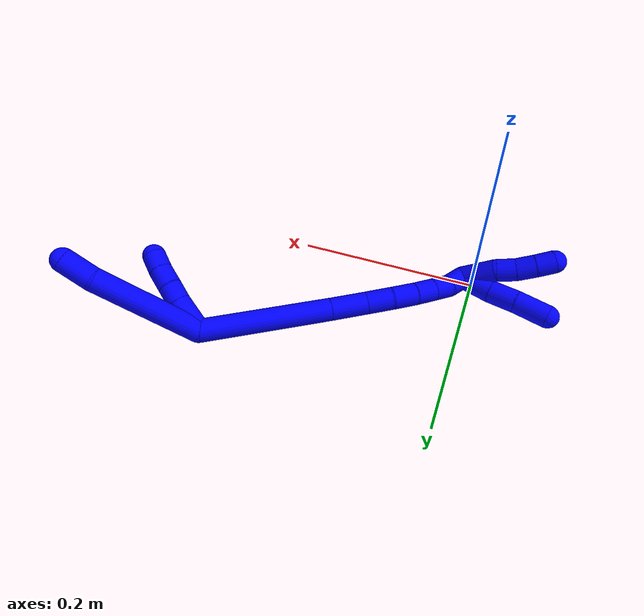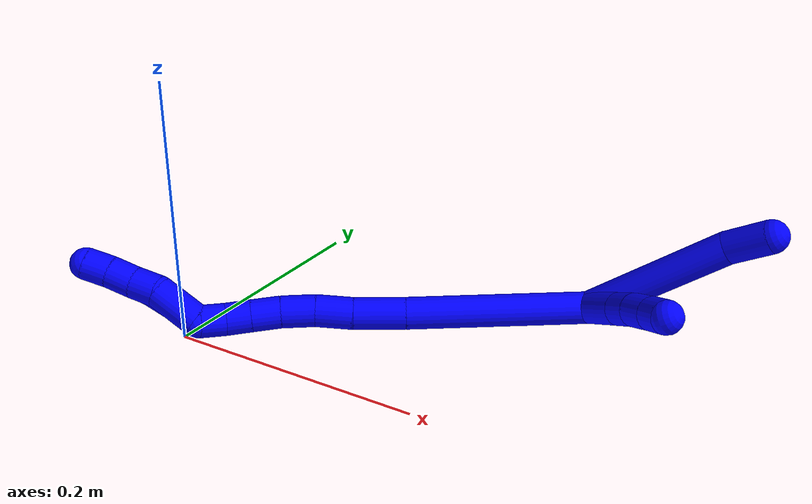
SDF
<sdf version="1.7">
 <world name="default">
  <model name="1">
   <static>0</static>
   <link name="1">
    <collision name="collision-cylinder-e_1_2_8">
     <pose>0.00236 0.012735 0.056804 -0.220543 0.04051 -0.004486</pose>
     <geometry><cylinder><radius>0.0125</radius><length>0.116524</length></cylinder></geometry>
     <surface>
      <friction><ode><mu>1.16</mu><mu2>1.16</mu2><slip1>0</slip1><slip2>0</slip2></ode></friction>
      <contact><ode><kp>1e+06</kp><kd>1</kd><max_vel>0</max_vel><min_depth>0.001</min_depth></ode></contact>
     </surface>
    </collision>
    <visual name="visual-cylinder-e_1_2_8">
     <pose>0.00236 0.012735 0.056804 -0.220543 0.04051 -0.004486</pose>
     <geometry><cylinder><radius>0.0125</radius><length>0.116524</length></cylinder></geometry>
     <material><ambient>0 0 1 1</ambient></material>
    </visual>
    <collision name="collision-cylinder-e_2_8_6">
     <pose>0.005823 0.025209 0.130308 0.015625 0.065985 0.000516</pose>
     <geometry><cylinder><radius>0.0125</radius><length>0.033476</length></cylinder></geometry>
     <surface>
      <friction><ode><mu>1.16</mu><mu2>1.16</mu2><slip1>0</slip1><slip2>0</slip2></ode></friction>
      <contact><ode><kp>1e+06</kp><kd>1</kd><max_vel>0</max_vel><min_depth>0.001</min_depth></ode></contact>
     </surface>
    </collision>
    <visual name="visual-cylinder-e_2_8_6">
     <pose>0.005823 0.025209 0.130308 0.015625 0.065985 0.000516</pose>
     <geometry><cylinder><radius>0.0125</radius><length>0.033476</length></cylinder></geometry>
     <material><ambient>0 0 1 1</ambient></material>
    </visual>
    <collision name="collision-cylinder-e_1_2_9">
     <pose>-0.001603 -0.008185 0.017012 0.448446 -0.084712 -0.01933</pose>
     <geometry><cylinder><radius>0.0125</radius><length>0.037893</length></cylinder></geometry>
     <surface>
      <friction><ode><mu>1.16</mu><mu2>1.16</mu2><slip1>0</slip1><slip2>0</slip2></ode></friction>
      <contact><ode><kp>1e+06</kp><kd>1</kd><max_vel>0</max_vel><min_depth>0.001</min_depth></ode></contact>
     </surface>
    </collision>
    <visual name="visual-cylinder-e_1_2_9">
     <pose>-0.001603 -0.008185 0.017012 0.448446 -0.084712 -0.01933</pose>
     <geometry><cylinder><radius>0.0125</radius><length>0.037893</length></cylinder></geometry>
     <material><ambient>0 0 1 1</ambient></material>
    </visual>
    <collision name="collision-cylinder-e_2_9_10">
     <pose>-0.004641 -0.021175 0.042699 0.505811 -0.143649 -0.037184</pose>
     <geometry><cylinder><radius>0.0125</radius><length>0.02004</length></cylinder></geometry>
     <surface>
      <friction><ode><mu>1.16</mu><mu2>1.16</mu2><slip1>0</slip1><slip2>0</slip2></ode></friction>
      <contact><ode><kp>1e+06</kp><kd>1</kd><max_vel>0</max_vel><min_depth>0.001</min_depth></ode></contact>
     </surface>
    </collision>
    <visual name="visual-cylinder-e_2_9_10">
     <pose>-0.004641 -0.021175 0.042699 0.505811 -0.143649 -0.037184</pose>
     <geometry><cylinder><radius>0.0125</radius><length>0.02004</length></cylinder></geometry>
     <material><ambient>0 0 1 1</ambient></material>
    </visual>
    <collision name="collision-cylinder-e_3_10_11">
     <pose>-0.006884 -0.031864 0.060612 0.5671 -0.073766 -0.021505</pose>
     <geometry><cylinder><radius>0.0125</radius><length>0.021966</length></cylinder></geometry>
     <surface>
      <friction><ode><mu>1.16</mu><mu2>1.16</mu2><slip1>0</slip1><slip2>0</slip2></ode></friction>
      <contact><ode><kp>1e+06</kp><kd>1</kd><max_vel>0</max_vel><min_depth>0.001</min_depth></ode></contact>
     </surface>
    </collision>
    <visual name="visual-cylinder-e_3_10_11">
     <pose>-0.006884 -0.031864 0.060612 0.5671 -0.073766 -0.021505</pose>
     <geometry><cylinder><radius>0.0125</radius><length>0.021966</length></cylinder></geometry>
     <material><ambient>0 0 1 1</ambient></material>
    </visual>
    <collision name="collision-cylinder-e_4_11_5">
     <pose>-0.009148 -0.043627 0.077871 0.632566 -0.145154 -0.047579</pose>
     <geometry><cylinder><radius>0.0125</radius><length>0.020101</length></cylinder></geometry>
     <surface>
      <friction><ode><mu>1.16</mu><mu2>1.16</mu2><slip1>0</slip1><slip2>0</slip2></ode></friction>
      <contact><ode><kp>1e+06</kp><kd>1</kd><max_vel>0</max_vel><min_depth>0.001</min_depth></ode></contact>
     </surface>
    </collision>
    <visual name="visual-cylinder-e_4_11_5">
     <pose>-0.009148 -0.043627 0.077871 0.632566 -0.145154 -0.047579</pose>
     <geometry><cylinder><radius>0.0125</radius><length>0.020101</length></cylinder></geometry>
     <material><ambient>0 0 1 1</ambient></material>
    </visual>
    <collision name="collision-cylinder-e_1_2_12">
     <pose>-0.043095 -0.025768 -0.049646 2.66284 -0.656463 -1.89797</pose>
     <geometry><cylinder><radius>0.0125</radius><length>0.141223</length></cylinder></geometry>
     <surface>
      <friction><ode><mu>1.16</mu><mu2>1.16</mu2><slip1>0</slip1><slip2>0</slip2></ode></friction>
      <contact><ode><kp>1e+06</kp><kd>1</kd><max_vel>0</max_vel><min_depth>0.001</min_depth></ode></contact>
     </surface>
    </collision>
    <visual name="visual-cylinder-e_1_2_12">
     <pose>-0.043095 -0.025768 -0.049646 2.66284 -0.656463 -1.89797</pose>
     <geometry><cylinder><radius>0.0125</radius><length>0.141223</length></cylinder></geometry>
     <material><ambient>0 0 1 1</ambient></material>
    </visual>
    <collision name="collision-cylinder-e_2_12_13">
     <pose>-0.098932 -0.058595 -0.113262 2.67369 -0.683239 -1.96064</pose>
     <geometry><cylinder><radius>0.0125</radius><length>0.040364</length></cylinder></geometry>
     <surface>
      <friction><ode><mu>1.16</mu><mu2>1.16</mu2><slip1>0</slip1><slip2>0</slip2></ode></friction>
      <contact><ode><kp>1e+06</kp><kd>1</kd><max_vel>0</max_vel><min_depth>0.001</min_depth></ode></contact>
     </surface>
    </collision>
    <visual name="visual-cylinder-e_2_12_13">
     <pose>-0.098932 -0.058595 -0.113262 2.67369 -0.683239 -1.96064</pose>
     <geometry><cylinder><radius>0.0125</radius><length>0.040364</length></cylinder></geometry>
     <material><ambient>0 0 1 1</ambient></material>
    </visual>
    <collision name="collision-cylinder-e_3_13_14">
     <pose>-0.121454 -0.069743 -0.137037 2.74645 -0.744141 -2.19367</pose>
     <geometry><cylinder><radius>0.0125</radius><length>0.028881</length></cylinder></geometry>
     <surface>
      <friction><ode><mu>1.16</mu><mu2>1.16</mu2><slip1>0</slip1><slip2>0</slip2></ode></friction>
      <contact><ode><kp>1e+06</kp><kd>1</kd><max_vel>0</max_vel><min_depth>0.001</min_depth></ode></contact>
     </surface>
    </collision>
    <visual name="visual-cylinder-e_3_13_14">
     <pose>-0.121454 -0.069743 -0.137037 2.74645 -0.744141 -2.19367</pose>
     <geometry><cylinder><radius>0.0125</radius><length>0.028881</length></cylinder></geometry>
     <material><ambient>0 0 1 1</ambient></material>
    </visual>
    <collision name="collision-cylinder-e_4_14_15">
     <pose>-0.139382 -0.078974 -0.155885 2.62463 -0.664365 -1.8337</pose>
     <geometry><cylinder><radius>0.0125</radius><length>0.026427</length></cylinder></geometry>
     <surface>
      <friction><ode><mu>1.16</mu><mu2>1.16</mu2><slip1>0</slip1><slip2>0</slip2></ode></friction>
      <contact><ode><kp>1e+06</kp><kd>1</kd><max_vel>0</max_vel><min_depth>0.001</min_depth></ode></contact>
     </surface>
    </collision>
    <visual name="visual-cylinder-e_4_14_15">
     <pose>-0.139382 -0.078974 -0.155885 2.62463 -0.664365 -1.8337</pose>
     <geometry><cylinder><radius>0.0125</radius><length>0.026427</length></cylinder></geometry>
     <material><ambient>0 0 1 1</ambient></material>
    </visual>
    <collision name="collision-cylinder-e_5_15_16">
     <pose>-0.15398 -0.089585 -0.172389 2.50903 -0.608996 -1.53029</pose>
     <geometry><cylinder><radius>0.0125</radius><length>0.022555</length></cylinder></geometry>
     <surface>
      <friction><ode><mu>1.16</mu><mu2>1.16</mu2><slip1>0</slip1><slip2>0</slip2></ode></friction>
      <contact><ode><kp>1e+06</kp><kd>1</kd><max_vel>0</max_vel><min_depth>0.001</min_depth></ode></contact>
     </surface>
    </collision>
    <visual name="visual-cylinder-e_5_15_16">
     <pose>-0.15398 -0.089585 -0.172389 2.50903 -0.608996 -1.53029</pose>
     <geometry><cylinder><radius>0.0125</radius><length>0.022555</length></cylinder></geometry>
     <material><ambient>0 0 1 1</ambient></material>
    </visual>
    <collision name="collision-cylinder-e_6_16_17">
     <pose>-0.166185 -0.100027 -0.186368 2.48978 -0.611853 -1.50318</pose>
     <geometry><cylinder><radius>0.0125</radius><length>0.020034</length></cylinder></geometry>
     <surface>
      <friction><ode><mu>1.16</mu><mu2>1.16</mu2><slip1>0</slip1><slip2>0</slip2></ode></friction>
      <contact><ode><kp>1e+06</kp><kd>1</kd><max_vel>0</max_vel><min_depth>0.001</min_depth></ode></contact>
     </surface>
    </collision>
    <visual name="visual-cylinder-e_6_16_17">
     <pose>-0.166185 -0.100027 -0.186368 2.48978 -0.611853 -1.50318</pose>
     <geometry><cylinder><radius>0.0125</radius><length>0.020034</length></cylinder></geometry>
     <material><ambient>0 0 1 1</ambient></material>
    </visual>
    <collision name="collision-cylinder-e_7_17_1">
     <pose>-0.178918 -0.111127 -0.197246 2.18931 -0.748307 -1.30147</pose>
     <geometry><cylinder><radius>0.0125</radius><length>0.020516</length></cylinder></geometry>
     <surface>
      <friction><ode><mu>1.16</mu><mu2>1.16</mu2><slip1>0</slip1><slip2>0</slip2></ode></friction>
      <contact><ode><kp>1e+06</kp><kd>1</kd><max_vel>0</max_vel><min_depth>0.001</min_depth></ode></contact>
     </surface>
    </collision>
    <visual name="visual-cylinder-e_7_17_1">
     <pose>-0.178918 -0.111127 -0.197246 2.18931 -0.748307 -1.30147</pose>
     <geometry><cylinder><radius>0.0125</radius><length>0.020516</length></cylinder></geometry>
     <material><ambient>0 0 1 1</ambient></material>
    </visual>
    <collision name="collision-cylinder-e_1_1_18">
     <pose>-0.20212 -0.113153 -0.210853 -2.72441 -1.01321 2.41277</pose>
     <geometry><cylinder><radius>0.0125</radius><length>0.038236</length></cylinder></geometry>
     <surface>
      <friction><ode><mu>1.16</mu><mu2>1.16</mu2><slip1>0</slip1><slip2>0</slip2></ode></friction>
      <contact><ode><kp>1e+06</kp><kd>1</kd><max_vel>0</max_vel><min_depth>0.001</min_depth></ode></contact>
     </surface>
    </collision>
    <visual name="visual-cylinder-e_1_1_18">
     <pose>-0.20212 -0.113153 -0.210853 -2.72441 -1.01321 2.41277</pose>
     <geometry><cylinder><radius>0.0125</radius><length>0.038236</length></cylinder></geometry>
     <material><ambient>0 0 1 1</ambient></material>
    </visual>
    <collision name="collision-cylinder-e_2_18_19">
     <pose>-0.225708 -0.10846 -0.227511 -3.06167 -0.780813 2.9479</pose>
     <geometry><cylinder><radius>0.0125</radius><length>0.020929</length></cylinder></geometry>
     <surface>
      <friction><ode><mu>1.16</mu><mu2>1.16</mu2><slip1>0</slip1><slip2>0</slip2></ode></friction>
      <contact><ode><kp>1e+06</kp><kd>1</kd><max_vel>0</max_vel><min_depth>0.001</min_depth></ode></contact>
     </surface>
    </collision>
    <visual name="visual-cylinder-e_2_18_19">
     <pose>-0.225708 -0.10846 -0.227511 -3.06167 -0.780813 2.9479</pose>
     <geometry><cylinder><radius>0.0125</radius><length>0.020929</length></cylinder></geometry>
     <material><ambient>0 0 1 1</ambient></material>
    </visual>
    <collision name="collision-cylinder-e_3_19_20">
     <pose>-0.241434 -0.107711 -0.241082 -3.11623 -0.935569 3.09139</pose>
     <geometry><cylinder><radius>0.0125</radius><length>0.020773</length></cylinder></geometry>
     <surface>
      <friction><ode><mu>1.16</mu><mu2>1.16</mu2><slip1>0</slip1><slip2>0</slip2></ode></friction>
      <contact><ode><kp>1e+06</kp><kd>1</kd><max_vel>0</max_vel><min_depth>0.001</min_depth></ode></contact>
     </surface>
    </collision>
    <visual name="visual-cylinder-e_3_19_20">
     <pose>-0.241434 -0.107711 -0.241082 -3.11623 -0.935569 3.09139</pose>
     <geometry><cylinder><radius>0.0125</radius><length>0.020773</length></cylinder></geometry>
     <material><ambient>0 0 1 1</ambient></material>
    </visual>
    <collision name="collision-cylinder-e_4_20_4">
     <pose>-0.257818 -0.108345 -0.25321 3.00985 -0.927144 -2.8792</pose>
     <geometry><cylinder><radius>0.0125</radius><length>0.020062</length></cylinder></geometry>
     <surface>
      <friction><ode><mu>1.16</mu><mu2>1.16</mu2><slip1>0</slip1><slip2>0</slip2></ode></friction>
      <contact><ode><kp>1e+06</kp><kd>1</kd><max_vel>0</max_vel><min_depth>0.001</min_depth></ode></contact>
     </surface>
    </collision>
    <visual name="visual-cylinder-e_4_20_4">
     <pose>-0.257818 -0.108345 -0.25321 3.00985 -0.927144 -2.8792</pose>
     <geometry><cylinder><radius>0.0125</radius><length>0.020062</length></cylinder></geometry>
     <material><ambient>0 0 1 1</ambient></material>
    </visual>
    <collision name="collision-cylinder-e_1_1_21">
     <pose>-0.192014 -0.1089 -0.215896 -2.61273 -0.353921 1.16738</pose>
     <geometry><cylinder><radius>0.0125</radius><length>0.035293</length></cylinder></geometry>
     <surface>
      <friction><ode><mu>1.16</mu><mu2>1.16</mu2><slip1>0</slip1><slip2>0</slip2></ode></friction>
      <contact><ode><kp>1e+06</kp><kd>1</kd><max_vel>0</max_vel><min_depth>0.001</min_depth></ode></contact>
     </surface>
    </collision>
    <visual name="visual-cylinder-e_1_1_21">
     <pose>-0.192014 -0.1089 -0.215896 -2.61273 -0.353921 1.16738</pose>
     <geometry><cylinder><radius>0.0125</radius><length>0.035293</length></cylinder></geometry>
     <material><ambient>0 0 1 1</ambient></material>
    </visual>
    <collision name="collision-cylinder-e_2_21_22">
     <pose>-0.20414 -0.094842 -0.242075 -2.69405 -0.427677 1.52392</pose>
     <geometry><cylinder><radius>0.0125</radius><length>0.028982</length></cylinder></geometry>
     <surface>
      <friction><ode><mu>1.16</mu><mu2>1.16</mu2><slip1>0</slip1><slip2>0</slip2></ode></friction>
      <contact><ode><kp>1e+06</kp><kd>1</kd><max_vel>0</max_vel><min_depth>0.001</min_depth></ode></contact>
     </surface>
    </collision>
    <visual name="visual-cylinder-e_2_21_22">
     <pose>-0.20414 -0.094842 -0.242075 -2.69405 -0.427677 1.52392</pose>
     <geometry><cylinder><radius>0.0125</radius><length>0.028982</length></cylinder></geometry>
     <material><ambient>0 0 1 1</ambient></material>
    </visual>
    <collision name="collision-cylinder-e_3_22_3">
     <pose>-0.216389 -0.082453 -0.269308 -2.73087 -0.356761 1.42694</pose>
     <geometry><cylinder><radius>0.0125</radius><length>0.035725</length></cylinder></geometry>
     <surface>
      <friction><ode><mu>1.16</mu><mu2>1.16</mu2><slip1>0</slip1><slip2>0</slip2></ode></friction>
      <contact><ode><kp>1e+06</kp><kd>1</kd><max_vel>0</max_vel><min_depth>0.001</min_depth></ode></contact>
     </surface>
    </collision>
    <visual name="visual-cylinder-e_3_22_3">
     <pose>-0.216389 -0.082453 -0.269308 -2.73087 -0.356761 1.42694</pose>
     <geometry><cylinder><radius>0.0125</radius><length>0.035725</length></cylinder></geometry>
     <material><ambient>0 0 1 1</ambient></material>
    </visual>
    <collision name="collision-sphere-3">
     <pose>-0.222627 -0.07577 -0.284653 0 -0 0</pose>
     <geometry><sphere><radius>0.0125</radius></sphere></geometry>
     <surface>
      <friction><ode><mu>1.16</mu><mu2>1.16</mu2><slip1>0</slip1><slip2>0</slip2></ode></friction>
      <contact><ode><kp>1e+06</kp><kd>1</kd><max_vel>0</max_vel><min_depth>0.001</min_depth></ode></contact>
     </surface>
    </collision>
    <visual name="visual-sphere-3">
     <pose>-0.222627 -0.07577 -0.284653 0 -0 0</pose>
     <geometry><sphere><radius>0.0125</radius></sphere></geometry>
     <material><ambient>0 0 1 1</ambient></material>
    </visual>
    <collision name="collision-sphere-22">
     <pose>-0.21015 -0.089136 -0.253962 0 -0 0</pose>
     <geometry><sphere><radius>0.0125</radius></sphere></geometry>
     <surface>
      <friction><ode><mu>1.16</mu><mu2>1.16</mu2><slip1>0</slip1><slip2>0</slip2></ode></friction>
      <contact><ode><kp>1e+06</kp><kd>1</kd><max_vel>0</max_vel><min_depth>0.001</min_depth></ode></contact>
     </surface>
    </collision>
    <visual name="visual-sphere-22">
     <pose>-0.21015 -0.089136 -0.253962 0 -0 0</pose>
     <geometry><sphere><radius>0.0125</radius></sphere></geometry>
     <material><ambient>0 0 1 1</ambient></material>
    </visual>
    <collision name="collision-sphere-21">
     <pose>-0.19813 -0.100548 -0.230187 0 -0 0</pose>
     <geometry><sphere><radius>0.0125</radius></sphere></geometry>
     <surface>
      <friction><ode><mu>1.16</mu><mu2>1.16</mu2><slip1>0</slip1><slip2>0</slip2></ode></friction>
      <contact><ode><kp>1e+06</kp><kd>1</kd><max_vel>0</max_vel><min_depth>0.001</min_depth></ode></contact>
     </surface>
    </collision>
    <visual name="visual-sphere-21">
     <pose>-0.19813 -0.100548 -0.230187 0 -0 0</pose>
     <geometry><sphere><radius>0.0125</radius></sphere></geometry>
     <material><ambient>0 0 1 1</ambient></material>
    </visual>
    <collision name="collision-sphere-4">
     <pose>-0.265842 -0.109136 -0.259178 0 -0 0</pose>
     <geometry><sphere><radius>0.0125</radius></sphere></geometry>
     <surface>
      <friction><ode><mu>1.16</mu><mu2>1.16</mu2><slip1>0</slip1><slip2>0</slip2></ode></friction>
      <contact><ode><kp>1e+06</kp><kd>1</kd><max_vel>0</max_vel><min_depth>0.001</min_depth></ode></contact>
     </surface>
    </collision>
    <visual name="visual-sphere-4">
     <pose>-0.265842 -0.109136 -0.259178 0 -0 0</pose>
     <geometry><sphere><radius>0.0125</radius></sphere></geometry>
     <material><ambient>0 0 1 1</ambient></material>
    </visual>
    <collision name="collision-sphere-20">
     <pose>-0.249794 -0.107554 -0.247242 0 -0 0</pose>
     <geometry><sphere><radius>0.0125</radius></sphere></geometry>
     <surface>
      <friction><ode><mu>1.16</mu><mu2>1.16</mu2><slip1>0</slip1><slip2>0</slip2></ode></friction>
      <contact><ode><kp>1e+06</kp><kd>1</kd><max_vel>0</max_vel><min_depth>0.001</min_depth></ode></contact>
     </surface>
    </collision>
    <visual name="visual-sphere-20">
     <pose>-0.249794 -0.107554 -0.247242 0 -0 0</pose>
     <geometry><sphere><radius>0.0125</radius></sphere></geometry>
     <material><ambient>0 0 1 1</ambient></material>
    </visual>
    <collision name="collision-sphere-11">
     <pose>-0.007694 -0.037747 0.069851 0 -0 0</pose>
     <geometry><sphere><radius>0.0125</radius></sphere></geometry>
     <surface>
      <friction><ode><mu>1.16</mu><mu2>1.16</mu2><slip1>0</slip1><slip2>0</slip2></ode></friction>
      <contact><ode><kp>1e+06</kp><kd>1</kd><max_vel>0</max_vel><min_depth>0.001</min_depth></ode></contact>
     </surface>
    </collision>
    <visual name="visual-sphere-11">
     <pose>-0.007694 -0.037747 0.069851 0 -0 0</pose>
     <geometry><sphere><radius>0.0125</radius></sphere></geometry>
     <material><ambient>0 0 1 1</ambient></material>
    </visual>
    <collision name="collision-sphere-10">
     <pose>-0.006075 -0.02598 0.051374 0 -0 0</pose>
     <geometry><sphere><radius>0.0125</radius></sphere></geometry>
     <surface>
      <friction><ode><mu>1.16</mu><mu2>1.16</mu2><slip1>0</slip1><slip2>0</slip2></ode></friction>
      <contact><ode><kp>1e+06</kp><kd>1</kd><max_vel>0</max_vel><min_depth>0.001</min_depth></ode></contact>
     </surface>
    </collision>
    <visual name="visual-sphere-10">
     <pose>-0.006075 -0.02598 0.051374 0 -0 0</pose>
     <geometry><sphere><radius>0.0125</radius></sphere></geometry>
     <material><ambient>0 0 1 1</ambient></material>
    </visual>
    <collision name="collision-sphere-6">
     <pose>0.006926 0.024948 0.147007 0 -0 0</pose>
     <geometry><sphere><radius>0.0125</radius></sphere></geometry>
     <surface>
      <friction><ode><mu>1.16</mu><mu2>1.16</mu2><slip1>0</slip1><slip2>0</slip2></ode></friction>
      <contact><ode><kp>1e+06</kp><kd>1</kd><max_vel>0</max_vel><min_depth>0.001</min_depth></ode></contact>
     </surface>
    </collision>
    <visual name="visual-sphere-6">
     <pose>0.006926 0.024948 0.147007 0 -0 0</pose>
     <geometry><sphere><radius>0.0125</radius></sphere></geometry>
     <material><ambient>0 0 1 1</ambient></material>
    </visual>
    <collision name="collision-sphere-9">
     <pose>-0.003206 -0.01637 0.034024 0 -0 0</pose>
     <geometry><sphere><radius>0.0125</radius></sphere></geometry>
     <surface>
      <friction><ode><mu>1.16</mu><mu2>1.16</mu2><slip1>0</slip1><slip2>0</slip2></ode></friction>
      <contact><ode><kp>1e+06</kp><kd>1</kd><max_vel>0</max_vel><min_depth>0.001</min_depth></ode></contact>
     </surface>
    </collision>
    <visual name="visual-sphere-9">
     <pose>-0.003206 -0.01637 0.034024 0 -0 0</pose>
     <geometry><sphere><radius>0.0125</radius></sphere></geometry>
     <material><ambient>0 0 1 1</ambient></material>
    </visual>
    <collision name="collision-sphere-2">
     <geometry><sphere><radius>0.0125</radius></sphere></geometry>
     <surface>
      <friction><ode><mu>1.16</mu><mu2>1.16</mu2><slip1>0</slip1><slip2>0</slip2></ode></friction>
      <contact><ode><kp>1e+06</kp><kd>1</kd><max_vel>0</max_vel><min_depth>0.001</min_depth></ode></contact>
     </surface>
    </collision>
    <visual name="visual-sphere-2">
     <geometry><sphere><radius>0.0125</radius></sphere></geometry>
     <material><ambient>0 0 1 1</ambient></material>
    </visual>
    <collision name="collision-sphere-19">
     <pose>-0.233074 -0.107867 -0.234921 0 -0 0</pose>
     <geometry><sphere><radius>0.0125</radius></sphere></geometry>
     <surface>
      <friction><ode><mu>1.16</mu><mu2>1.16</mu2><slip1>0</slip1><slip2>0</slip2></ode></friction>
      <contact><ode><kp>1e+06</kp><kd>1</kd><max_vel>0</max_vel><min_depth>0.001</min_depth></ode></contact>
     </surface>
    </collision>
    <visual name="visual-sphere-19">
     <pose>-0.233074 -0.107867 -0.234921 0 -0 0</pose>
     <geometry><sphere><radius>0.0125</radius></sphere></geometry>
     <material><ambient>0 0 1 1</ambient></material>
    </visual>
    <collision name="collision-sphere-8">
     <pose>0.004719 0.02547 0.113608 0 -0 0</pose>
     <geometry><sphere><radius>0.0125</radius></sphere></geometry>
     <surface>
      <friction><ode><mu>1.16</mu><mu2>1.16</mu2><slip1>0</slip1><slip2>0</slip2></ode></friction>
      <contact><ode><kp>1e+06</kp><kd>1</kd><max_vel>0</max_vel><min_depth>0.001</min_depth></ode></contact>
     </surface>
    </collision>
    <visual name="visual-sphere-8">
     <pose>0.004719 0.02547 0.113608 0 -0 0</pose>
     <geometry><sphere><radius>0.0125</radius></sphere></geometry>
     <material><ambient>0 0 1 1</ambient></material>
    </visual>
    <collision name="collision-sphere-5">
     <pose>-0.010601 -0.049507 0.085892 0 -0 0</pose>
     <geometry><sphere><radius>0.0125</radius></sphere></geometry>
     <surface>
      <friction><ode><mu>1.16</mu><mu2>1.16</mu2><slip1>0</slip1><slip2>0</slip2></ode></friction>
      <contact><ode><kp>1e+06</kp><kd>1</kd><max_vel>0</max_vel><min_depth>0.001</min_depth></ode></contact>
     </surface>
    </collision>
    <visual name="visual-sphere-5">
     <pose>-0.010601 -0.049507 0.085892 0 -0 0</pose>
     <geometry><sphere><radius>0.0125</radius></sphere></geometry>
     <material><ambient>0 0 1 1</ambient></material>
    </visual>
    <collision name="collision-sphere-12">
     <pose>-0.086191 -0.051535 -0.099293 0 -0 0</pose>
     <geometry><sphere><radius>0.0125</radius></sphere></geometry>
     <surface>
      <friction><ode><mu>1.16</mu><mu2>1.16</mu2><slip1>0</slip1><slip2>0</slip2></ode></friction>
      <contact><ode><kp>1e+06</kp><kd>1</kd><max_vel>0</max_vel><min_depth>0.001</min_depth></ode></contact>
     </surface>
    </collision>
    <visual name="visual-sphere-12">
     <pose>-0.086191 -0.051535 -0.099293 0 -0 0</pose>
     <geometry><sphere><radius>0.0125</radius></sphere></geometry>
     <material><ambient>0 0 1 1</ambient></material>
    </visual>
    <collision name="collision-sphere-13">
     <pose>-0.111673 -0.065654 -0.127232 0 -0 0</pose>
     <geometry><sphere><radius>0.0125</radius></sphere></geometry>
     <surface>
      <friction><ode><mu>1.16</mu><mu2>1.16</mu2><slip1>0</slip1><slip2>0</slip2></ode></friction>
      <contact><ode><kp>1e+06</kp><kd>1</kd><max_vel>0</max_vel><min_depth>0.001</min_depth></ode></contact>
     </surface>
    </collision>
    <visual name="visual-sphere-13">
     <pose>-0.111673 -0.065654 -0.127232 0 -0 0</pose>
     <geometry><sphere><radius>0.0125</radius></sphere></geometry>
     <material><ambient>0 0 1 1</ambient></material>
    </visual>
    <collision name="collision-sphere-14">
     <pose>-0.131235 -0.073832 -0.146841 0 -0 0</pose>
     <geometry><sphere><radius>0.0125</radius></sphere></geometry>
     <surface>
      <friction><ode><mu>1.16</mu><mu2>1.16</mu2><slip1>0</slip1><slip2>0</slip2></ode></friction>
      <contact><ode><kp>1e+06</kp><kd>1</kd><max_vel>0</max_vel><min_depth>0.001</min_depth></ode></contact>
     </surface>
    </collision>
    <visual name="visual-sphere-14">
     <pose>-0.131235 -0.073832 -0.146841 0 -0 0</pose>
     <geometry><sphere><radius>0.0125</radius></sphere></geometry>
     <material><ambient>0 0 1 1</ambient></material>
    </visual>
    <collision name="collision-sphere-15">
     <pose>-0.147529 -0.084116 -0.164929 0 -0 0</pose>
     <geometry><sphere><radius>0.0125</radius></sphere></geometry>
     <surface>
      <friction><ode><mu>1.16</mu><mu2>1.16</mu2><slip1>0</slip1><slip2>0</slip2></ode></friction>
      <contact><ode><kp>1e+06</kp><kd>1</kd><max_vel>0</max_vel><min_depth>0.001</min_depth></ode></contact>
     </surface>
    </collision>
    <visual name="visual-sphere-15">
     <pose>-0.147529 -0.084116 -0.164929 0 -0 0</pose>
     <geometry><sphere><radius>0.0125</radius></sphere></geometry>
     <material><ambient>0 0 1 1</ambient></material>
    </visual>
    <collision name="collision-sphere-16">
     <pose>-0.160431 -0.095053 -0.179849 0 -0 0</pose>
     <geometry><sphere><radius>0.0125</radius></sphere></geometry>
     <surface>
      <friction><ode><mu>1.16</mu><mu2>1.16</mu2><slip1>0</slip1><slip2>0</slip2></ode></friction>
      <contact><ode><kp>1e+06</kp><kd>1</kd><max_vel>0</max_vel><min_depth>0.001</min_depth></ode></contact>
     </surface>
    </collision>
    <visual name="visual-sphere-16">
     <pose>-0.160431 -0.095053 -0.179849 0 -0 0</pose>
     <geometry><sphere><radius>0.0125</radius></sphere></geometry>
     <material><ambient>0 0 1 1</ambient></material>
    </visual>
    <collision name="collision-sphere-17">
     <pose>-0.171939 -0.105002 -0.192887 0 -0 0</pose>
     <geometry><sphere><radius>0.0125</radius></sphere></geometry>
     <surface>
      <friction><ode><mu>1.16</mu><mu2>1.16</mu2><slip1>0</slip1><slip2>0</slip2></ode></friction>
      <contact><ode><kp>1e+06</kp><kd>1</kd><max_vel>0</max_vel><min_depth>0.001</min_depth></ode></contact>
     </surface>
    </collision>
    <visual name="visual-sphere-17">
     <pose>-0.171939 -0.105002 -0.192887 0 -0 0</pose>
     <geometry><sphere><radius>0.0125</radius></sphere></geometry>
     <material><ambient>0 0 1 1</ambient></material>
    </visual>
    <collision name="collision-sphere-1">
     <pose>-0.185898 -0.117252 -0.201605 0 -0 0</pose>
     <geometry><sphere><radius>0.0125</radius></sphere></geometry>
     <surface>
      <friction><ode><mu>1.16</mu><mu2>1.16</mu2><slip1>0</slip1><slip2>0</slip2></ode></friction>
      <contact><ode><kp>1e+06</kp><kd>1</kd><max_vel>0</max_vel><min_depth>0.001</min_depth></ode></contact>
     </surface>
    </collision>
    <visual name="visual-sphere-1">
     <pose>-0.185898 -0.117252 -0.201605 0 -0 0</pose>
     <geometry><sphere><radius>0.0125</radius></sphere></geometry>
     <material><ambient>0 0 1 1</ambient></material>
    </visual>
    <collision name="collision-sphere-18">
     <pose>-0.218343 -0.109054 -0.220102 0 -0 0</pose>
     <geometry><sphere><radius>0.0125</radius></sphere></geometry>
     <surface>
      <friction><ode><mu>1.16</mu><mu2>1.16</mu2><slip1>0</slip1><slip2>0</slip2></ode></friction>
      <contact><ode><kp>1e+06</kp><kd>1</kd><max_vel>0</max_vel><min_depth>0.001</min_depth></ode></contact>
     </surface>
    </collision>
    <visual name="visual-sphere-18">
     <pose>-0.218343 -0.109054 -0.220102 0 -0 0</pose>
     <geometry><sphere><radius>0.0125</radius></sphere></geometry>
     <material><ambient>0 0 1 1</ambient></material>
    </visual>
    <inertial>
     <pose>-0.094435 -0.049252 -0.084158 0 -0 0</pose>
     <mass>0.75</mass>
     <inertia>
      <ixx>-0.000119</ixx>
      <ixy>0</ixy>
      <ixz>0</ixz>
      <iyy>0.000112</iyy>
      <iyz>0</iyz>
      <izz>0.000221</izz>
     </inertia>
    </inertial>
   </link>
   <pose>0.252777 0.178569 0.013397 0.559033 0.899091 0.646851</pose>
  </model>
 </world>
</sdf>
